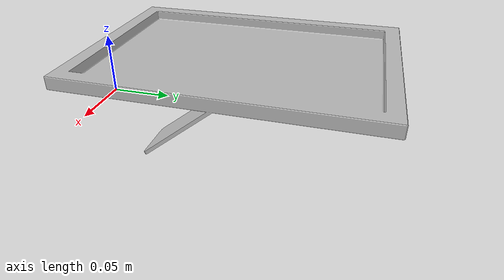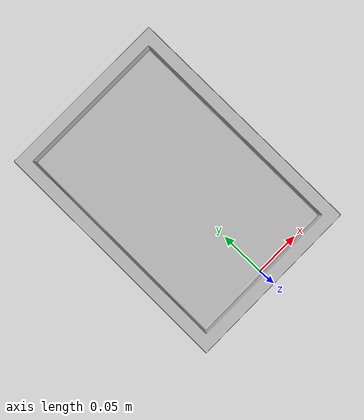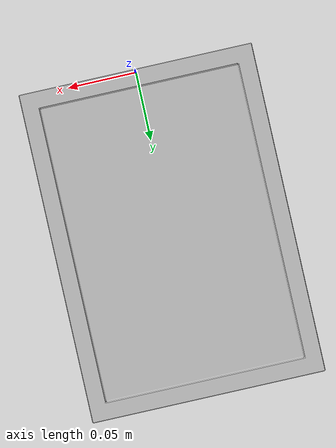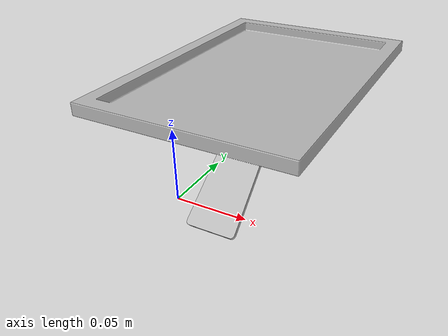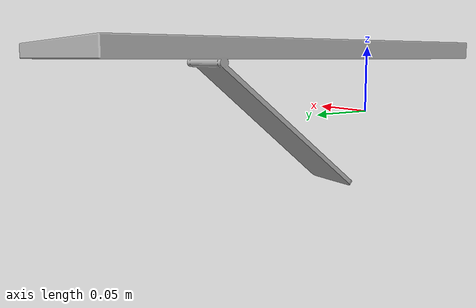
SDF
<?xml version="1.0" ?>
<sdf version="1.6">
  <model name="aws_robomaker_residential_DeskPortraitB_02">
    <link name="link">

      <inertial>
        <mass>1</mass>
        <inertia>
            <ixx>0.0135</ixx>
            <ixy>0</ixy>
            <ixz>0</ixz>
            <iyy>0.02</iyy>
            <iyz>0</iyz>
            <izz>0.01347</izz>
        </inertia>
      </inertial>

      <collision name="collision">
        <geometry>
          <mesh>
<uri>model://aws_robomaker_residential_DeskPortraitB_02/meshes/object.obj</uri>
            <scale>1 1 1</scale>
          </mesh>
        </geometry>
      </collision>

      <visual name="visual">
	    <geometry>
          <mesh>
<uri>model://aws_robomaker_residential_DeskPortraitB_02/meshes/object.obj</uri>
          </mesh>
        </geometry>
      <meta> <layer> 1 </layer></meta>
</visual>
    </link>
  </model>
</sdf>
